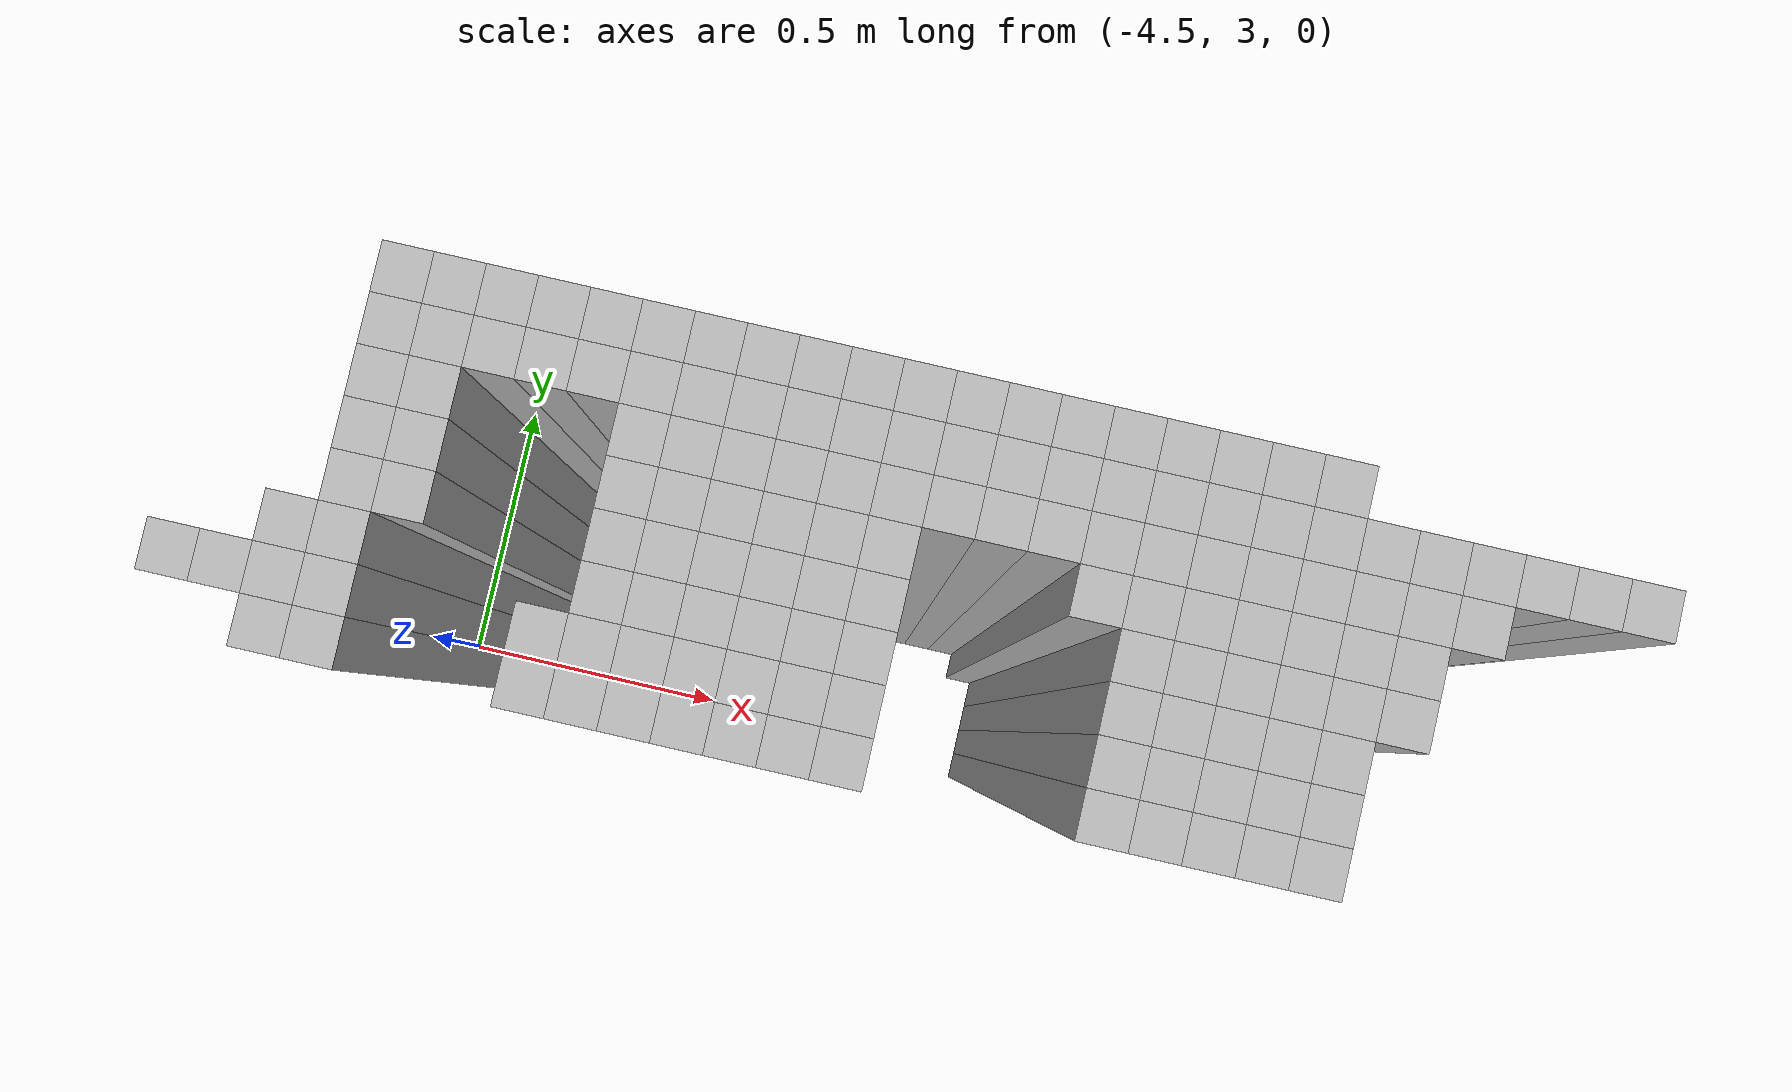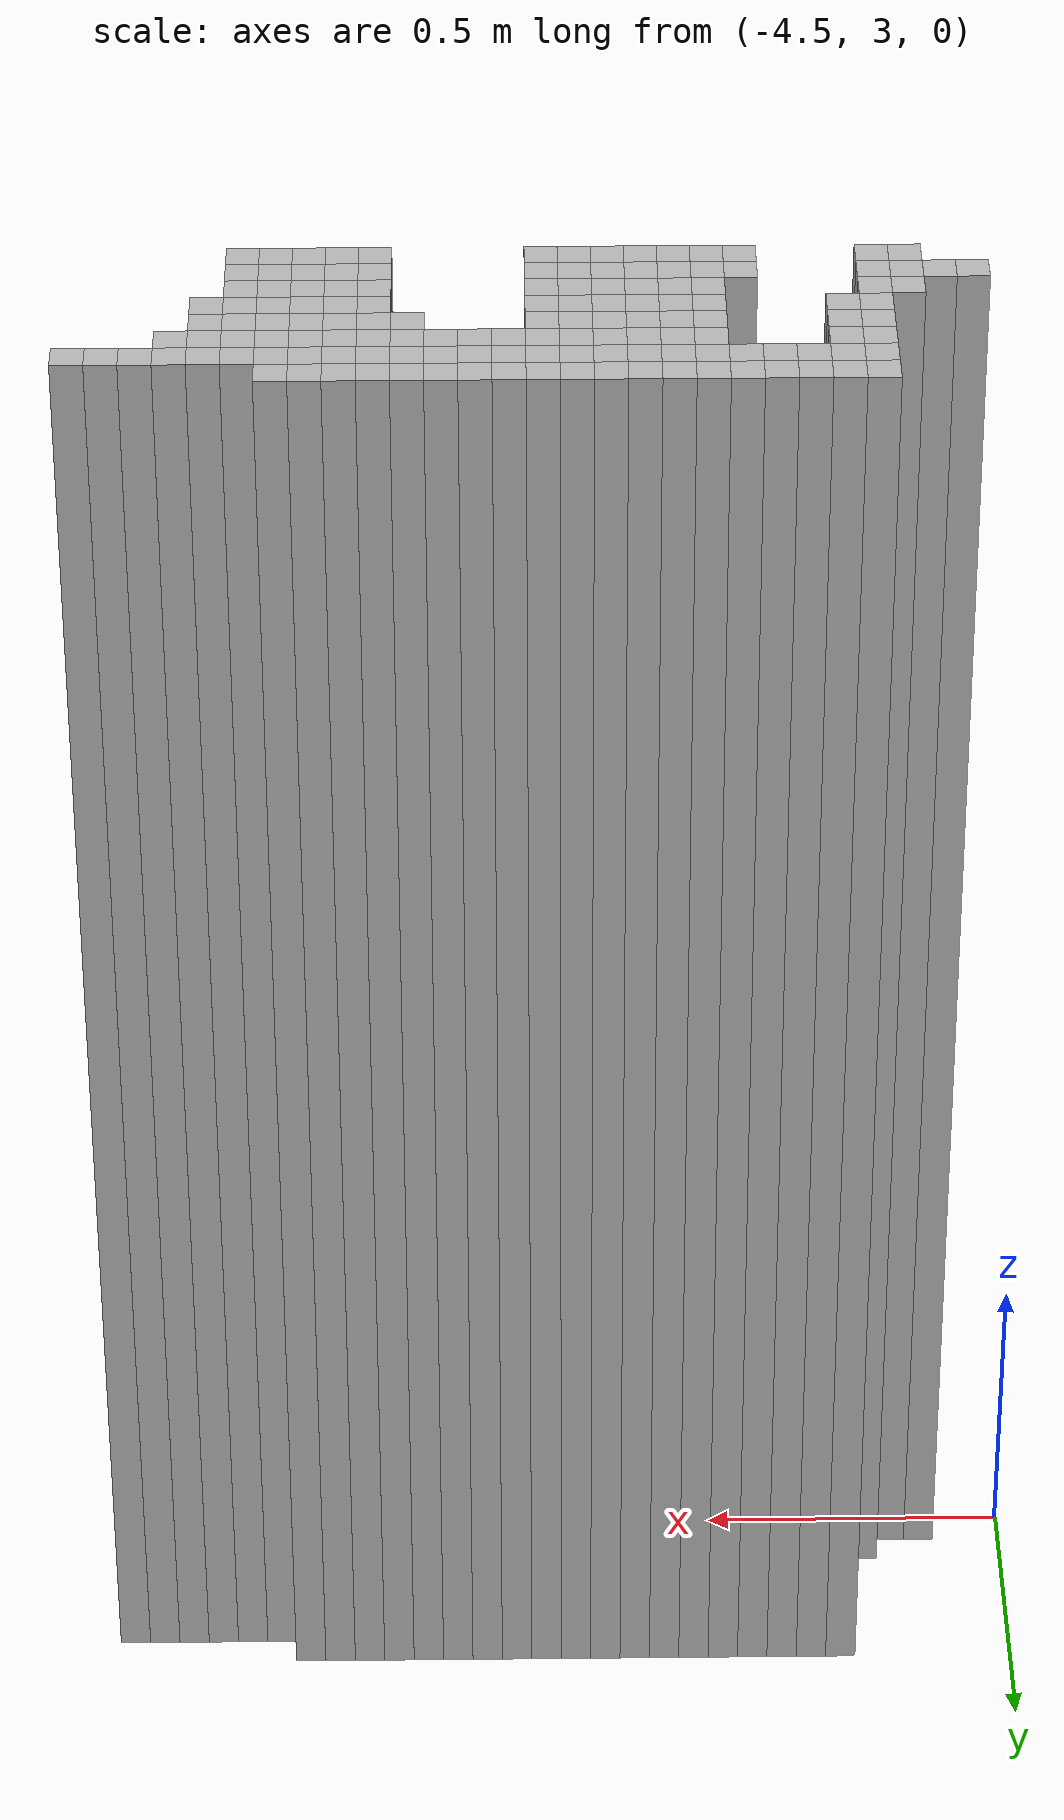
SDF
<sdf version="1.9">
 <world name="map_world">
  <model name="wall_139_87">
   <static>true</static>
   <pose>-4.211 3.330 1.250 0 0 0</pose>
   <link name="link">
    <collision name="collision"><geometry><box><size>0.050 0.050 2.500</size></box></geometry></collision>
    <visual name="visual"><geometry><box><size>0.050 0.050 2.500</size></box></geometry></visual>
   </link>
  </model>
  <model name="wall_140_87">
   <static>true</static>
   <pose>-4.161 3.330 1.250 0 0 0</pose>
   <link name="link">
    <collision name="collision"><geometry><box><size>0.050 0.050 2.500</size></box></geometry></collision>
    <visual name="visual"><geometry><box><size>0.050 0.050 2.500</size></box></geometry></visual>
   </link>
  </model>
  <model name="wall_141_87">
   <static>true</static>
   <pose>-4.111 3.330 1.250 0 0 0</pose>
   <link name="link">
    <collision name="collision"><geometry><box><size>0.050 0.050 2.500</size></box></geometry></collision>
    <visual name="visual"><geometry><box><size>0.050 0.050 2.500</size></box></geometry></visual>
   </link>
  </model>
  <model name="wall_142_87">
   <static>true</static>
   <pose>-4.061 3.330 1.250 0 0 0</pose>
   <link name="link">
    <collision name="collision"><geometry><box><size>0.050 0.050 2.500</size></box></geometry></collision>
    <visual name="visual"><geometry><box><size>0.050 0.050 2.500</size></box></geometry></visual>
   </link>
  </model>
  <model name="wall_143_87">
   <static>true</static>
   <pose>-4.011 3.330 1.250 0 0 0</pose>
   <link name="link">
    <collision name="collision"><geometry><box><size>0.050 0.050 2.500</size></box></geometry></collision>
    <visual name="visual"><geometry><box><size>0.050 0.050 2.500</size></box></geometry></visual>
   </link>
  </model>
  <model name="wall_144_87">
   <static>true</static>
   <pose>-3.961 3.330 1.250 0 0 0</pose>
   <link name="link">
    <collision name="collision"><geometry><box><size>0.050 0.050 2.500</size></box></geometry></collision>
    <visual name="visual"><geometry><box><size>0.050 0.050 2.500</size></box></geometry></visual>
   </link>
  </model>
  <model name="wall_145_87">
   <static>true</static>
   <pose>-3.911 3.330 1.250 0 0 0</pose>
   <link name="link">
    <collision name="collision"><geometry><box><size>0.050 0.050 2.500</size></box></geometry></collision>
    <visual name="visual"><geometry><box><size>0.050 0.050 2.500</size></box></geometry></visual>
   </link>
  </model>
  <model name="wall_146_87">
   <static>true</static>
   <pose>-3.861 3.330 1.250 0 0 0</pose>
   <link name="link">
    <collision name="collision"><geometry><box><size>0.050 0.050 2.500</size></box></geometry></collision>
    <visual name="visual"><geometry><box><size>0.050 0.050 2.500</size></box></geometry></visual>
   </link>
  </model>
  <model name="wall_147_87">
   <static>true</static>
   <pose>-3.811 3.330 1.250 0 0 0</pose>
   <link name="link">
    <collision name="collision"><geometry><box><size>0.050 0.050 2.500</size></box></geometry></collision>
    <visual name="visual"><geometry><box><size>0.050 0.050 2.500</size></box></geometry></visual>
   </link>
  </model>
  <model name="wall_148_87">
   <static>true</static>
   <pose>-3.761 3.330 1.250 0 0 0</pose>
   <link name="link">
    <collision name="collision"><geometry><box><size>0.050 0.050 2.500</size></box></geometry></collision>
    <visual name="visual"><geometry><box><size>0.050 0.050 2.500</size></box></geometry></visual>
   </link>
  </model>
  <model name="wall_149_87">
   <static>true</static>
   <pose>-3.711 3.330 1.250 0 0 0</pose>
   <link name="link">
    <collision name="collision"><geometry><box><size>0.050 0.050 2.500</size></box></geometry></collision>
    <visual name="visual"><geometry><box><size>0.050 0.050 2.500</size></box></geometry></visual>
   </link>
  </model>
  <model name="wall_150_87">
   <static>true</static>
   <pose>-3.661 3.330 1.250 0 0 0</pose>
   <link name="link">
    <collision name="collision"><geometry><box><size>0.050 0.050 2.500</size></box></geometry></collision>
    <visual name="visual"><geometry><box><size>0.050 0.050 2.500</size></box></geometry></visual>
   </link>
  </model>
  <model name="wall_151_87">
   <static>true</static>
   <pose>-3.611 3.330 1.250 0 0 0</pose>
   <link name="link">
    <collision name="collision"><geometry><box><size>0.050 0.050 2.500</size></box></geometry></collision>
    <visual name="visual"><geometry><box><size>0.050 0.050 2.500</size></box></geometry></visual>
   </link>
  </model>
  <model name="wall_152_87">
   <static>true</static>
   <pose>-3.561 3.330 1.250 0 0 0</pose>
   <link name="link">
    <collision name="collision"><geometry><box><size>0.050 0.050 2.500</size></box></geometry></collision>
    <visual name="visual"><geometry><box><size>0.050 0.050 2.500</size></box></geometry></visual>
   </link>
  </model>
  <model name="wall_153_87">
   <static>true</static>
   <pose>-3.511 3.330 1.250 0 0 0</pose>
   <link name="link">
    <collision name="collision"><geometry><box><size>0.050 0.050 2.500</size></box></geometry></collision>
    <visual name="visual"><geometry><box><size>0.050 0.050 2.500</size></box></geometry></visual>
   </link>
  </model>
  <model name="wall_154_87">
   <static>true</static>
   <pose>-3.461 3.330 1.250 0 0 0</pose>
   <link name="link">
    <collision name="collision"><geometry><box><size>0.050 0.050 2.500</size></box></geometry></collision>
    <visual name="visual"><geometry><box><size>0.050 0.050 2.500</size></box></geometry></visual>
   </link>
  </model>
  <model name="wall_155_87">
   <static>true</static>
   <pose>-3.411 3.330 1.250 0 0 0</pose>
   <link name="link">
    <collision name="collision"><geometry><box><size>0.050 0.050 2.500</size></box></geometry></collision>
    <visual name="visual"><geometry><box><size>0.050 0.050 2.500</size></box></geometry></visual>
   </link>
  </model>
  <model name="wall_156_87">
   <static>true</static>
   <pose>-3.361 3.330 1.250 0 0 0</pose>
   <link name="link">
    <collision name="collision"><geometry><box><size>0.050 0.050 2.500</size></box></geometry></collision>
    <visual name="visual"><geometry><box><size>0.050 0.050 2.500</size></box></geometry></visual>
   </link>
  </model>
  <model name="wall_157_87">
   <static>true</static>
   <pose>-3.311 3.330 1.250 0 0 0</pose>
   <link name="link">
    <collision name="collision"><geometry><box><size>0.050 0.050 2.500</size></box></geometry></collision>
    <visual name="visual"><geometry><box><size>0.050 0.050 2.500</size></box></geometry></visual>
   </link>
  </model>
  <model name="wall_139_88">
   <static>true</static>
   <pose>-4.211 3.280 1.250 0 0 0</pose>
   <link name="link">
    <collision name="collision"><geometry><box><size>0.050 0.050 2.500</size></box></geometry></collision>
    <visual name="visual"><geometry><box><size>0.050 0.050 2.500</size></box></geometry></visual>
   </link>
  </model>
  <model name="wall_140_88">
   <static>true</static>
   <pose>-4.161 3.280 1.250 0 0 0</pose>
   <link name="link">
    <collision name="collision"><geometry><box><size>0.050 0.050 2.500</size></box></geometry></collision>
    <visual name="visual"><geometry><box><size>0.050 0.050 2.500</size></box></geometry></visual>
   </link>
  </model>
  <model name="wall_141_88">
   <static>true</static>
   <pose>-4.111 3.280 1.250 0 0 0</pose>
   <link name="link">
    <collision name="collision"><geometry><box><size>0.050 0.050 2.500</size></box></geometry></collision>
    <visual name="visual"><geometry><box><size>0.050 0.050 2.500</size></box></geometry></visual>
   </link>
  </model>
  <model name="wall_142_88">
   <static>true</static>
   <pose>-4.061 3.280 1.250 0 0 0</pose>
   <link name="link">
    <collision name="collision"><geometry><box><size>0.050 0.050 2.500</size></box></geometry></collision>
    <visual name="visual"><geometry><box><size>0.050 0.050 2.500</size></box></geometry></visual>
   </link>
  </model>
  <model name="wall_143_88">
   <static>true</static>
   <pose>-4.011 3.280 1.250 0 0 0</pose>
   <link name="link">
    <collision name="collision"><geometry><box><size>0.050 0.050 2.500</size></box></geometry></collision>
    <visual name="visual"><geometry><box><size>0.050 0.050 2.500</size></box></geometry></visual>
   </link>
  </model>
  <model name="wall_144_88">
   <static>true</static>
   <pose>-3.961 3.280 1.250 0 0 0</pose>
   <link name="link">
    <collision name="collision"><geometry><box><size>0.050 0.050 2.500</size></box></geometry></collision>
    <visual name="visual"><geometry><box><size>0.050 0.050 2.500</size></box></geometry></visual>
   </link>
  </model>
  <model name="wall_145_88">
   <static>true</static>
   <pose>-3.911 3.280 1.250 0 0 0</pose>
   <link name="link">
    <collision name="collision"><geometry><box><size>0.050 0.050 2.500</size></box></geometry></collision>
    <visual name="visual"><geometry><box><size>0.050 0.050 2.500</size></box></geometry></visual>
   </link>
  </model>
  <model name="wall_146_88">
   <static>true</static>
   <pose>-3.861 3.280 1.250 0 0 0</pose>
   <link name="link">
    <collision name="collision"><geometry><box><size>0.050 0.050 2.500</size></box></geometry></collision>
    <visual name="visual"><geometry><box><size>0.050 0.050 2.500</size></box></geometry></visual>
   </link>
  </model>
  <model name="wall_147_88">
   <static>true</static>
   <pose>-3.811 3.280 1.250 0 0 0</pose>
   <link name="link">
    <collision name="collision"><geometry><box><size>0.050 0.050 2.500</size></box></geometry></collision>
    <visual name="visual"><geometry><box><size>0.050 0.050 2.500</size></box></geometry></visual>
   </link>
  </model>
  <model name="wall_148_88">
   <static>true</static>
   <pose>-3.761 3.280 1.250 0 0 0</pose>
   <link name="link">
    <collision name="collision"><geometry><box><size>0.050 0.050 2.500</size></box></geometry></collision>
    <visual name="visual"><geometry><box><size>0.050 0.050 2.500</size></box></geometry></visual>
   </link>
  </model>
  <model name="wall_149_88">
   <static>true</static>
   <pose>-3.711 3.280 1.250 0 0 0</pose>
   <link name="link">
    <collision name="collision"><geometry><box><size>0.050 0.050 2.500</size></box></geometry></collision>
    <visual name="visual"><geometry><box><size>0.050 0.050 2.500</size></box></geometry></visual>
   </link>
  </model>
  <model name="wall_150_88">
   <static>true</static>
   <pose>-3.661 3.280 1.250 0 0 0</pose>
   <link name="link">
    <collision name="collision"><geometry><box><size>0.050 0.050 2.500</size></box></geometry></collision>
    <visual name="visual"><geometry><box><size>0.050 0.050 2.500</size></box></geometry></visual>
   </link>
  </model>
  <model name="wall_151_88">
   <static>true</static>
   <pose>-3.611 3.280 1.250 0 0 0</pose>
   <link name="link">
    <collision name="collision"><geometry><box><size>0.050 0.050 2.500</size></box></geometry></collision>
    <visual name="visual"><geometry><box><size>0.050 0.050 2.500</size></box></geometry></visual>
   </link>
  </model>
  <model name="wall_152_88">
   <static>true</static>
   <pose>-3.561 3.280 1.250 0 0 0</pose>
   <link name="link">
    <collision name="collision"><geometry><box><size>0.050 0.050 2.500</size></box></geometry></collision>
    <visual name="visual"><geometry><box><size>0.050 0.050 2.500</size></box></geometry></visual>
   </link>
  </model>
  <model name="wall_153_88">
   <static>true</static>
   <pose>-3.511 3.280 1.250 0 0 0</pose>
   <link name="link">
    <collision name="collision"><geometry><box><size>0.050 0.050 2.500</size></box></geometry></collision>
    <visual name="visual"><geometry><box><size>0.050 0.050 2.500</size></box></geometry></visual>
   </link>
  </model>
  <model name="wall_154_88">
   <static>true</static>
   <pose>-3.461 3.280 1.250 0 0 0</pose>
   <link name="link">
    <collision name="collision"><geometry><box><size>0.050 0.050 2.500</size></box></geometry></collision>
    <visual name="visual"><geometry><box><size>0.050 0.050 2.500</size></box></geometry></visual>
   </link>
  </model>
  <model name="wall_155_88">
   <static>true</static>
   <pose>-3.411 3.280 1.250 0 0 0</pose>
   <link name="link">
    <collision name="collision"><geometry><box><size>0.050 0.050 2.500</size></box></geometry></collision>
    <visual name="visual"><geometry><box><size>0.050 0.050 2.500</size></box></geometry></visual>
   </link>
  </model>
  <model name="wall_156_88">
   <static>true</static>
   <pose>-3.361 3.280 1.250 0 0 0</pose>
   <link name="link">
    <collision name="collision"><geometry><box><size>0.050 0.050 2.500</size></box></geometry></collision>
    <visual name="visual"><geometry><box><size>0.050 0.050 2.500</size></box></geometry></visual>
   </link>
  </model>
  <model name="wall_157_88">
   <static>true</static>
   <pose>-3.311 3.280 1.250 0 0 0</pose>
   <link name="link">
    <collision name="collision"><geometry><box><size>0.050 0.050 2.500</size></box></geometry></collision>
    <visual name="visual"><geometry><box><size>0.050 0.050 2.500</size></box></geometry></visual>
   </link>
  </model>
  <model name="wall_158_88">
   <static>true</static>
   <pose>-3.261 3.280 1.250 0 0 0</pose>
   <link name="link">
    <collision name="collision"><geometry><box><size>0.050 0.050 2.500</size></box></geometry></collision>
    <visual name="visual"><geometry><box><size>0.050 0.050 2.500</size></box></geometry></visual>
   </link>
  </model>
  <model name="wall_159_88">
   <static>true</static>
   <pose>-3.211 3.280 1.250 0 0 0</pose>
   <link name="link">
    <collision name="collision"><geometry><box><size>0.050 0.050 2.500</size></box></geometry></collision>
    <visual name="visual"><geometry><box><size>0.050 0.050 2.500</size></box></geometry></visual>
   </link>
  </model>
  <model name="wall_160_88">
   <static>true</static>
   <pose>-3.161 3.280 1.250 0 0 0</pose>
   <link name="link">
    <collision name="collision"><geometry><box><size>0.050 0.050 2.500</size></box></geometry></collision>
    <visual name="visual"><geometry><box><size>0.050 0.050 2.500</size></box></geometry></visual>
   </link>
  </model>
  <model name="wall_161_88">
   <static>true</static>
   <pose>-3.111 3.280 1.250 0 0 0</pose>
   <link name="link">
    <collision name="collision"><geometry><box><size>0.050 0.050 2.500</size></box></geometry></collision>
    <visual name="visual"><geometry><box><size>0.050 0.050 2.500</size></box></geometry></visual>
   </link>
  </model>
  <model name="wall_162_88">
   <static>true</static>
   <pose>-3.061 3.280 1.250 0 0 0</pose>
   <link name="link">
    <collision name="collision"><geometry><box><size>0.050 0.050 2.500</size></box></geometry></collision>
    <visual name="visual"><geometry><box><size>0.050 0.050 2.500</size></box></geometry></visual>
   </link>
  </model>
  <model name="wall_163_88">
   <static>true</static>
   <pose>-3.011 3.280 1.250 0 0 0</pose>
   <link name="link">
    <collision name="collision"><geometry><box><size>0.050 0.050 2.500</size></box></geometry></collision>
    <visual name="visual"><geometry><box><size>0.050 0.050 2.500</size></box></geometry></visual>
   </link>
  </model>
  <model name="wall_139_89">
   <static>true</static>
   <pose>-4.211 3.230 1.250 0 0 0</pose>
   <link name="link">
    <collision name="collision"><geometry><box><size>0.050 0.050 2.500</size></box></geometry></collision>
    <visual name="visual"><geometry><box><size>0.050 0.050 2.500</size></box></geometry></visual>
   </link>
  </model>
  <model name="wall_140_89">
   <static>true</static>
   <pose>-4.161 3.230 1.250 0 0 0</pose>
   <link name="link">
    <collision name="collision"><geometry><box><size>0.050 0.050 2.500</size></box></geometry></collision>
    <visual name="visual"><geometry><box><size>0.050 0.050 2.500</size></box></geometry></visual>
   </link>
  </model>
  <model name="wall_144_89">
   <static>true</static>
   <pose>-3.961 3.230 1.250 0 0 0</pose>
   <link name="link">
    <collision name="collision"><geometry><box><size>0.050 0.050 2.500</size></box></geometry></collision>
    <visual name="visual"><geometry><box><size>0.050 0.050 2.500</size></box></geometry></visual>
   </link>
  </model>
  <model name="wall_145_89">
   <static>true</static>
   <pose>-3.911 3.230 1.250 0 0 0</pose>
   <link name="link">
    <collision name="collision"><geometry><box><size>0.050 0.050 2.500</size></box></geometry></collision>
    <visual name="visual"><geometry><box><size>0.050 0.050 2.500</size></box></geometry></visual>
   </link>
  </model>
  <model name="wall_146_89">
   <static>true</static>
   <pose>-3.861 3.230 1.250 0 0 0</pose>
   <link name="link">
    <collision name="collision"><geometry><box><size>0.050 0.050 2.500</size></box></geometry></collision>
    <visual name="visual"><geometry><box><size>0.050 0.050 2.500</size></box></geometry></visual>
   </link>
  </model>
  <model name="wall_147_89">
   <static>true</static>
   <pose>-3.811 3.230 1.250 0 0 0</pose>
   <link name="link">
    <collision name="collision"><geometry><box><size>0.050 0.050 2.500</size></box></geometry></collision>
    <visual name="visual"><geometry><box><size>0.050 0.050 2.500</size></box></geometry></visual>
   </link>
  </model>
  <model name="wall_148_89">
   <static>true</static>
   <pose>-3.761 3.230 1.250 0 0 0</pose>
   <link name="link">
    <collision name="collision"><geometry><box><size>0.050 0.050 2.500</size></box></geometry></collision>
    <visual name="visual"><geometry><box><size>0.050 0.050 2.500</size></box></geometry></visual>
   </link>
  </model>
  <model name="wall_149_89">
   <static>true</static>
   <pose>-3.711 3.230 1.250 0 0 0</pose>
   <link name="link">
    <collision name="collision"><geometry><box><size>0.050 0.050 2.500</size></box></geometry></collision>
    <visual name="visual"><geometry><box><size>0.050 0.050 2.500</size></box></geometry></visual>
   </link>
  </model>
  <model name="wall_150_89">
   <static>true</static>
   <pose>-3.661 3.230 1.250 0 0 0</pose>
   <link name="link">
    <collision name="collision"><geometry><box><size>0.050 0.050 2.500</size></box></geometry></collision>
    <visual name="visual"><geometry><box><size>0.050 0.050 2.500</size></box></geometry></visual>
   </link>
  </model>
  <model name="wall_151_89">
   <static>true</static>
   <pose>-3.611 3.230 1.250 0 0 0</pose>
   <link name="link">
    <collision name="collision"><geometry><box><size>0.050 0.050 2.500</size></box></geometry></collision>
    <visual name="visual"><geometry><box><size>0.050 0.050 2.500</size></box></geometry></visual>
   </link>
  </model>
  <model name="wall_152_89">
   <static>true</static>
   <pose>-3.561 3.230 1.250 0 0 0</pose>
   <link name="link">
    <collision name="collision"><geometry><box><size>0.050 0.050 2.500</size></box></geometry></collision>
    <visual name="visual"><geometry><box><size>0.050 0.050 2.500</size></box></geometry></visual>
   </link>
  </model>
  <model name="wall_153_89">
   <static>true</static>
   <pose>-3.511 3.230 1.250 0 0 0</pose>
   <link name="link">
    <collision name="collision"><geometry><box><size>0.050 0.050 2.500</size></box></geometry></collision>
    <visual name="visual"><geometry><box><size>0.050 0.050 2.500</size></box></geometry></visual>
   </link>
  </model>
  <model name="wall_154_89">
   <static>true</static>
   <pose>-3.461 3.230 1.250 0 0 0</pose>
   <link name="link">
    <collision name="collision"><geometry><box><size>0.050 0.050 2.500</size></box></geometry></collision>
    <visual name="visual"><geometry><box><size>0.050 0.050 2.500</size></box></geometry></visual>
   </link>
  </model>
  <model name="wall_155_89">
   <static>true</static>
   <pose>-3.411 3.230 1.250 0 0 0</pose>
   <link name="link">
    <collision name="collision"><geometry><box><size>0.050 0.050 2.500</size></box></geometry></collision>
    <visual name="visual"><geometry><box><size>0.050 0.050 2.500</size></box></geometry></visual>
   </link>
  </model>
  <model name="wall_156_89">
   <static>true</static>
   <pose>-3.361 3.230 1.250 0 0 0</pose>
   <link name="link">
    <collision name="collision"><geometry><box><size>0.050 0.050 2.500</size></box></geometry></collision>
    <visual name="visual"><geometry><box><size>0.050 0.050 2.500</size></box></geometry></visual>
   </link>
  </model>
  <model name="wall_157_89">
   <static>true</static>
   <pose>-3.311 3.230 1.250 0 0 0</pose>
   <link name="link">
    <collision name="collision"><geometry><box><size>0.050 0.050 2.500</size></box></geometry></collision>
    <visual name="visual"><geometry><box><size>0.050 0.050 2.500</size></box></geometry></visual>
   </link>
  </model>
  <model name="wall_158_89">
   <static>true</static>
   <pose>-3.261 3.230 1.250 0 0 0</pose>
   <link name="link">
    <collision name="collision"><geometry><box><size>0.050 0.050 2.500</size></box></geometry></collision>
    <visual name="visual"><geometry><box><size>0.050 0.050 2.500</size></box></geometry></visual>
   </link>
  </model>
  <model name="wall_159_89">
   <static>true</static>
   <pose>-3.211 3.230 1.250 0 0 0</pose>
   <link name="link">
    <collision name="collision"><geometry><box><size>0.050 0.050 2.500</size></box></geometry></collision>
    <visual name="visual"><geometry><box><size>0.050 0.050 2.500</size></box></geometry></visual>
   </link>
  </model>
  <model name="wall_160_89">
   <static>true</static>
   <pose>-3.161 3.230 1.250 0 0 0</pose>
   <link name="link">
    <collision name="collision"><geometry><box><size>0.050 0.050 2.500</size></box></geometry></collision>
    <visual name="visual"><geometry><box><size>0.050 0.050 2.500</size></box></geometry></visual>
   </link>
  </model>
  <model name="wall_139_90">
   <static>true</static>
   <pose>-4.211 3.180 1.250 0 0 0</pose>
   <link name="link">
    <collision name="collision"><geometry><box><size>0.050 0.050 2.500</size></box></geometry></collision>
    <visual name="visual"><geometry><box><size>0.050 0.050 2.500</size></box></geometry></visual>
   </link>
  </model>
  <model name="wall_140_90">
   <static>true</static>
   <pose>-4.161 3.180 1.250 0 0 0</pose>
   <link name="link">
    <collision name="collision"><geometry><box><size>0.050 0.050 2.500</size></box></geometry></collision>
    <visual name="visual"><geometry><box><size>0.050 0.050 2.500</size></box></geometry></visual>
   </link>
  </model>
  <model name="wall_144_90">
   <static>true</static>
   <pose>-3.961 3.180 1.250 0 0 0</pose>
   <link name="link">
    <collision name="collision"><geometry><box><size>0.050 0.050 2.500</size></box></geometry></collision>
    <visual name="visual"><geometry><box><size>0.050 0.050 2.500</size></box></geometry></visual>
   </link>
  </model>
  <model name="wall_145_90">
   <static>true</static>
   <pose>-3.911 3.180 1.250 0 0 0</pose>
   <link name="link">
    <collision name="collision"><geometry><box><size>0.050 0.050 2.500</size></box></geometry></collision>
    <visual name="visual"><geometry><box><size>0.050 0.050 2.500</size></box></geometry></visual>
   </link>
  </model>
  <model name="wall_146_90">
   <static>true</static>
   <pose>-3.861 3.180 1.250 0 0 0</pose>
   <link name="link">
    <collision name="collision"><geometry><box><size>0.050 0.050 2.500</size></box></geometry></collision>
    <visual name="visual"><geometry><box><size>0.050 0.050 2.500</size></box></geometry></visual>
   </link>
  </model>
  <model name="wall_147_90">
   <static>true</static>
   <pose>-3.811 3.180 1.250 0 0 0</pose>
   <link name="link">
    <collision name="collision"><geometry><box><size>0.050 0.050 2.500</size></box></geometry></collision>
    <visual name="visual"><geometry><box><size>0.050 0.050 2.500</size></box></geometry></visual>
   </link>
  </model>
  <model name="wall_148_90">
   <static>true</static>
   <pose>-3.761 3.180 1.250 0 0 0</pose>
   <link name="link">
    <collision name="collision"><geometry><box><size>0.050 0.050 2.500</size></box></geometry></collision>
    <visual name="visual"><geometry><box><size>0.050 0.050 2.500</size></box></geometry></visual>
   </link>
  </model>
  <model name="wall_149_90">
   <static>true</static>
   <pose>-3.711 3.180 1.250 0 0 0</pose>
   <link name="link">
    <collision name="collision"><geometry><box><size>0.050 0.050 2.500</size></box></geometry></collision>
    <visual name="visual"><geometry><box><size>0.050 0.050 2.500</size></box></geometry></visual>
   </link>
  </model>
  <model name="wall_153_90">
   <static>true</static>
   <pose>-3.511 3.180 1.250 0 0 0</pose>
   <link name="link">
    <collision name="collision"><geometry><box><size>0.050 0.050 2.500</size></box></geometry></collision>
    <visual name="visual"><geometry><box><size>0.050 0.050 2.500</size></box></geometry></visual>
   </link>
  </model>
  <model name="wall_154_90">
   <static>true</static>
   <pose>-3.461 3.180 1.250 0 0 0</pose>
   <link name="link">
    <collision name="collision"><geometry><box><size>0.050 0.050 2.500</size></box></geometry></collision>
    <visual name="visual"><geometry><box><size>0.050 0.050 2.500</size></box></geometry></visual>
   </link>
  </model>
  <model name="wall_155_90">
   <static>true</static>
   <pose>-3.411 3.180 1.250 0 0 0</pose>
   <link name="link">
    <collision name="collision"><geometry><box><size>0.050 0.050 2.500</size></box></geometry></collision>
    <visual name="visual"><geometry><box><size>0.050 0.050 2.500</size></box></geometry></visual>
   </link>
  </model>
  <model name="wall_156_90">
   <static>true</static>
   <pose>-3.361 3.180 1.250 0 0 0</pose>
   <link name="link">
    <collision name="collision"><geometry><box><size>0.050 0.050 2.500</size></box></geometry></collision>
    <visual name="visual"><geometry><box><size>0.050 0.050 2.500</size></box></geometry></visual>
   </link>
  </model>
  <model name="wall_157_90">
   <static>true</static>
   <pose>-3.311 3.180 1.250 0 0 0</pose>
   <link name="link">
    <collision name="collision"><geometry><box><size>0.050 0.050 2.500</size></box></geometry></collision>
    <visual name="visual"><geometry><box><size>0.050 0.050 2.500</size></box></geometry></visual>
   </link>
  </model>
  <model name="wall_158_90">
   <static>true</static>
   <pose>-3.261 3.180 1.250 0 0 0</pose>
   <link name="link">
    <collision name="collision"><geometry><box><size>0.050 0.050 2.500</size></box></geometry></collision>
    <visual name="visual"><geometry><box><size>0.050 0.050 2.500</size></box></geometry></visual>
   </link>
  </model>
  <model name="wall_159_90">
   <static>true</static>
   <pose>-3.211 3.180 1.250 0 0 0</pose>
   <link name="link">
    <collision name="collision"><geometry><box><size>0.050 0.050 2.500</size></box></geometry></collision>
    <visual name="visual"><geometry><box><size>0.050 0.050 2.500</size></box></geometry></visual>
   </link>
  </model>
  <model name="wall_139_91">
   <static>true</static>
   <pose>-4.211 3.130 1.250 0 0 0</pose>
   <link name="link">
    <collision name="collision"><geometry><box><size>0.050 0.050 2.500</size></box></geometry></collision>
    <visual name="visual"><geometry><box><size>0.050 0.050 2.500</size></box></geometry></visual>
   </link>
  </model>
  <model name="wall_140_91">
   <static>true</static>
   <pose>-4.161 3.130 1.250 0 0 0</pose>
   <link name="link">
    <collision name="collision"><geometry><box><size>0.050 0.050 2.500</size></box></geometry></collision>
    <visual name="visual"><geometry><box><size>0.050 0.050 2.500</size></box></geometry></visual>
   </link>
  </model>
  <model name="wall_144_91">
   <static>true</static>
   <pose>-3.961 3.130 1.250 0 0 0</pose>
   <link name="link">
    <collision name="collision"><geometry><box><size>0.050 0.050 2.500</size></box></geometry></collision>
    <visual name="visual"><geometry><box><size>0.050 0.050 2.500</size></box></geometry></visual>
   </link>
  </model>
  <model name="wall_145_91">
   <static>true</static>
   <pose>-3.911 3.130 1.250 0 0 0</pose>
   <link name="link">
    <collision name="collision"><geometry><box><size>0.050 0.050 2.500</size></box></geometry></collision>
    <visual name="visual"><geometry><box><size>0.050 0.050 2.500</size></box></geometry></visual>
   </link>
  </model>
  <model name="wall_146_91">
   <static>true</static>
   <pose>-3.861 3.130 1.250 0 0 0</pose>
   <link name="link">
    <collision name="collision"><geometry><box><size>0.050 0.050 2.500</size></box></geometry></collision>
    <visual name="visual"><geometry><box><size>0.050 0.050 2.500</size></box></geometry></visual>
   </link>
  </model>
  <model name="wall_147_91">
   <static>true</static>
   <pose>-3.811 3.130 1.250 0 0 0</pose>
   <link name="link">
    <collision name="collision"><geometry><box><size>0.050 0.050 2.500</size></box></geometry></collision>
    <visual name="visual"><geometry><box><size>0.050 0.050 2.500</size></box></geometry></visual>
   </link>
  </model>
  <model name="wall_148_91">
   <static>true</static>
   <pose>-3.761 3.130 1.250 0 0 0</pose>
   <link name="link">
    <collision name="collision"><geometry><box><size>0.050 0.050 2.500</size></box></geometry></collision>
    <visual name="visual"><geometry><box><size>0.050 0.050 2.500</size></box></geometry></visual>
   </link>
  </model>
  <model name="wall_149_91">
   <static>true</static>
   <pose>-3.711 3.130 1.250 0 0 0</pose>
   <link name="link">
    <collision name="collision"><geometry><box><size>0.050 0.050 2.500</size></box></geometry></collision>
    <visual name="visual"><geometry><box><size>0.050 0.050 2.500</size></box></geometry></visual>
   </link>
  </model>
  <model name="wall_154_91">
   <static>true</static>
   <pose>-3.461 3.130 1.250 0 0 0</pose>
   <link name="link">
    <collision name="collision"><geometry><box><size>0.050 0.050 2.500</size></box></geometry></collision>
    <visual name="visual"><geometry><box><size>0.050 0.050 2.500</size></box></geometry></visual>
   </link>
  </model>
  <model name="wall_155_91">
   <static>true</static>
   <pose>-3.411 3.130 1.250 0 0 0</pose>
   <link name="link">
    <collision name="collision"><geometry><box><size>0.050 0.050 2.500</size></box></geometry></collision>
    <visual name="visual"><geometry><box><size>0.050 0.050 2.500</size></box></geometry></visual>
   </link>
  </model>
  <model name="wall_156_91">
   <static>true</static>
   <pose>-3.361 3.130 1.250 0 0 0</pose>
   <link name="link">
    <collision name="collision"><geometry><box><size>0.050 0.050 2.500</size></box></geometry></collision>
    <visual name="visual"><geometry><box><size>0.050 0.050 2.500</size></box></geometry></visual>
   </link>
  </model>
  <model name="wall_157_91">
   <static>true</static>
   <pose>-3.311 3.130 1.250 0 0 0</pose>
   <link name="link">
    <collision name="collision"><geometry><box><size>0.050 0.050 2.500</size></box></geometry></collision>
    <visual name="visual"><geometry><box><size>0.050 0.050 2.500</size></box></geometry></visual>
   </link>
  </model>
  <model name="wall_158_91">
   <static>true</static>
   <pose>-3.261 3.130 1.250 0 0 0</pose>
   <link name="link">
    <collision name="collision"><geometry><box><size>0.050 0.050 2.500</size></box></geometry></collision>
    <visual name="visual"><geometry><box><size>0.050 0.050 2.500</size></box></geometry></visual>
   </link>
  </model>
  <model name="wall_159_91">
   <static>true</static>
   <pose>-3.211 3.130 1.250 0 0 0</pose>
   <link name="link">
    <collision name="collision"><geometry><box><size>0.050 0.050 2.500</size></box></geometry></collision>
    <visual name="visual"><geometry><box><size>0.050 0.050 2.500</size></box></geometry></visual>
   </link>
  </model>
  <model name="wall_138_92">
   <static>true</static>
   <pose>-4.261 3.080 1.250 0 0 0</pose>
   <link name="link">
    <collision name="collision"><geometry><box><size>0.050 0.050 2.500</size></box></geometry></collision>
    <visual name="visual"><geometry><box><size>0.050 0.050 2.500</size></box></geometry></visual>
   </link>
  </model>
  <model name="wall_139_92">
   <static>true</static>
   <pose>-4.211 3.080 1.250 0 0 0</pose>
   <link name="link">
    <collision name="collision"><geometry><box><size>0.050 0.050 2.500</size></box></geometry></collision>
    <visual name="visual"><geometry><box><size>0.050 0.050 2.500</size></box></geometry></visual>
   </link>
  </model>
  <model name="wall_144_92">
   <static>true</static>
   <pose>-3.961 3.080 1.250 0 0 0</pose>
   <link name="link">
    <collision name="collision"><geometry><box><size>0.050 0.050 2.500</size></box></geometry></collision>
    <visual name="visual"><geometry><box><size>0.050 0.050 2.500</size></box></geometry></visual>
   </link>
  </model>
  <model name="wall_145_92">
   <static>true</static>
   <pose>-3.911 3.080 1.250 0 0 0</pose>
   <link name="link">
    <collision name="collision"><geometry><box><size>0.050 0.050 2.500</size></box></geometry></collision>
    <visual name="visual"><geometry><box><size>0.050 0.050 2.500</size></box></geometry></visual>
   </link>
  </model>
  <model name="wall_146_92">
   <static>true</static>
   <pose>-3.861 3.080 1.250 0 0 0</pose>
   <link name="link">
    <collision name="collision"><geometry><box><size>0.050 0.050 2.500</size></box></geometry></collision>
    <visual name="visual"><geometry><box><size>0.050 0.050 2.500</size></box></geometry></visual>
   </link>
  </model>
  <model name="wall_147_92">
   <static>true</static>
   <pose>-3.811 3.080 1.250 0 0 0</pose>
   <link name="link">
    <collision name="collision"><geometry><box><size>0.050 0.050 2.500</size></box></geometry></collision>
    <visual name="visual"><geometry><box><size>0.050 0.050 2.500</size></box></geometry></visual>
   </link>
  </model>
  <model name="wall_148_92">
   <static>true</static>
   <pose>-3.761 3.080 1.250 0 0 0</pose>
   <link name="link">
    <collision name="collision"><geometry><box><size>0.050 0.050 2.500</size></box></geometry></collision>
    <visual name="visual"><geometry><box><size>0.050 0.050 2.500</size></box></geometry></visual>
   </link>
  </model>
  <model name="wall_149_92">
   <static>true</static>
   <pose>-3.711 3.080 1.250 0 0 0</pose>
   <link name="link">
    <collision name="collision"><geometry><box><size>0.050 0.050 2.500</size></box></geometry></collision>
    <visual name="visual"><geometry><box><size>0.050 0.050 2.500</size></box></geometry></visual>
   </link>
  </model>
  <model name="wall_154_92">
   <static>true</static>
   <pose>-3.461 3.080 1.250 0 0 0</pose>
   <link name="link">
    <collision name="collision"><geometry><box><size>0.050 0.050 2.500</size></box></geometry></collision>
    <visual name="visual"><geometry><box><size>0.050 0.050 2.500</size></box></geometry></visual>
   </link>
  </model>
  <model name="wall_155_92">
   <static>true</static>
   <pose>-3.411 3.080 1.250 0 0 0</pose>
   <link name="link">
    <collision name="collision"><geometry><box><size>0.050 0.050 2.500</size></box></geometry></collision>
    <visual name="visual"><geometry><box><size>0.050 0.050 2.500</size></box></geometry></visual>
   </link>
  </model>
  <model name="wall_156_92">
   <static>true</static>
   <pose>-3.361 3.080 1.250 0 0 0</pose>
   <link name="link">
    <collision name="collision"><geometry><box><size>0.050 0.050 2.500</size></box></geometry></collision>
    <visual name="visual"><geometry><box><size>0.050 0.050 2.500</size></box></geometry></visual>
   </link>
  </model>
  <model name="wall_157_92">
   <static>true</static>
   <pose>-3.311 3.080 1.250 0 0 0</pose>
   <link name="link">
    <collision name="collision"><geometry><box><size>0.050 0.050 2.500</size></box></geometry></collision>
    <visual name="visual"><geometry><box><size>0.050 0.050 2.500</size></box></geometry></visual>
   </link>
  </model>
  <model name="wall_158_92">
   <static>true</static>
   <pose>-3.261 3.080 1.250 0 0 0</pose>
   <link name="link">
    <collision name="collision"><geometry><box><size>0.050 0.050 2.500</size></box></geometry></collision>
    <visual name="visual"><geometry><box><size>0.050 0.050 2.500</size></box></geometry></visual>
   </link>
  </model>
  <model name="wall_136_93">
   <static>true</static>
   <pose>-4.361 3.030 1.250 0 0 0</pose>
   <link name="link">
    <collision name="collision"><geometry><box><size>0.050 0.050 2.500</size></box></geometry></collision>
    <visual name="visual"><geometry><box><size>0.050 0.050 2.500</size></box></geometry></visual>
   </link>
  </model>
  <model name="wall_137_93">
   <static>true</static>
   <pose>-4.311 3.030 1.250 0 0 0</pose>
   <link name="link">
    <collision name="collision"><geometry><box><size>0.050 0.050 2.500</size></box></geometry></collision>
    <visual name="visual"><geometry><box><size>0.050 0.050 2.500</size></box></geometry></visual>
   </link>
  </model>
  <model name="wall_138_93">
   <static>true</static>
   <pose>-4.261 3.030 1.250 0 0 0</pose>
   <link name="link">
    <collision name="collision"><geometry><box><size>0.050 0.050 2.500</size></box></geometry></collision>
    <visual name="visual"><geometry><box><size>0.050 0.050 2.500</size></box></geometry></visual>
   </link>
  </model>
  <model name="wall_139_93">
   <static>true</static>
   <pose>-4.211 3.030 1.250 0 0 0</pose>
   <link name="link">
    <collision name="collision"><geometry><box><size>0.050 0.050 2.500</size></box></geometry></collision>
    <visual name="visual"><geometry><box><size>0.050 0.050 2.500</size></box></geometry></visual>
   </link>
  </model>
  <model name="wall_143_93">
   <static>true</static>
   <pose>-4.011 3.030 1.250 0 0 0</pose>
   <link name="link">
    <collision name="collision"><geometry><box><size>0.050 0.050 2.500</size></box></geometry></collision>
    <visual name="visual"><geometry><box><size>0.050 0.050 2.500</size></box></geometry></visual>
   </link>
  </model>
  <model name="wall_144_93">
   <static>true</static>
   <pose>-3.961 3.030 1.250 0 0 0</pose>
   <link name="link">
    <collision name="collision"><geometry><box><size>0.050 0.050 2.500</size></box></geometry></collision>
    <visual name="visual"><geometry><box><size>0.050 0.050 2.500</size></box></geometry></visual>
   </link>
  </model>
  <model name="wall_145_93">
   <static>true</static>
   <pose>-3.911 3.030 1.250 0 0 0</pose>
   <link name="link">
    <collision name="collision"><geometry><box><size>0.050 0.050 2.500</size></box></geometry></collision>
    <visual name="visual"><geometry><box><size>0.050 0.050 2.500</size></box></geometry></visual>
   </link>
  </model>
  <model name="wall_146_93">
   <static>true</static>
   <pose>-3.861 3.030 1.250 0 0 0</pose>
   <link name="link">
    <collision name="collision"><geometry><box><size>0.050 0.050 2.500</size></box></geometry></collision>
    <visual name="visual"><geometry><box><size>0.050 0.050 2.500</size></box></geometry></visual>
   </link>
  </model>
  <model name="wall_147_93">
   <static>true</static>
   <pose>-3.811 3.030 1.250 0 0 0</pose>
   <link name="link">
    <collision name="collision"><geometry><box><size>0.050 0.050 2.500</size></box></geometry></collision>
    <visual name="visual"><geometry><box><size>0.050 0.050 2.500</size></box></geometry></visual>
   </link>
  </model>
  <model name="wall_148_93">
   <static>true</static>
   <pose>-3.761 3.030 1.250 0 0 0</pose>
   <link name="link">
    <collision name="collision"><geometry><box><size>0.050 0.050 2.500</size></box></geometry></collision>
    <visual name="visual"><geometry><box><size>0.050 0.050 2.500</size></box></geometry></visual>
   </link>
  </model>
  <model name="wall_149_93">
   <static>true</static>
   <pose>-3.711 3.030 1.250 0 0 0</pose>
   <link name="link">
    <collision name="collision"><geometry><box><size>0.050 0.050 2.500</size></box></geometry></collision>
    <visual name="visual"><geometry><box><size>0.050 0.050 2.500</size></box></geometry></visual>
   </link>
  </model>
  <model name="wall_154_93">
   <static>true</static>
   <pose>-3.461 3.030 1.250 0 0 0</pose>
   <link name="link">
    <collision name="collision"><geometry><box><size>0.050 0.050 2.500</size></box></geometry></collision>
    <visual name="visual"><geometry><box><size>0.050 0.050 2.500</size></box></geometry></visual>
   </link>
  </model>
  <model name="wall_155_93">
   <static>true</static>
   <pose>-3.411 3.030 1.250 0 0 0</pose>
   <link name="link">
    <collision name="collision"><geometry><box><size>0.050 0.050 2.500</size></box></geometry></collision>
    <visual name="visual"><geometry><box><size>0.050 0.050 2.500</size></box></geometry></visual>
   </link>
  </model>
  <model name="wall_156_93">
   <static>true</static>
   <pose>-3.361 3.030 1.250 0 0 0</pose>
   <link name="link">
    <collision name="collision"><geometry><box><size>0.050 0.050 2.500</size></box></geometry></collision>
    <visual name="visual"><geometry><box><size>0.050 0.050 2.500</size></box></geometry></visual>
   </link>
  </model>
  <model name="wall_157_93">
   <static>true</static>
   <pose>-3.311 3.030 1.250 0 0 0</pose>
   <link name="link">
    <collision name="collision"><geometry><box><size>0.050 0.050 2.500</size></box></geometry></collision>
    <visual name="visual"><geometry><box><size>0.050 0.050 2.500</size></box></geometry></visual>
   </link>
  </model>
  <model name="wall_158_93">
   <static>true</static>
   <pose>-3.261 3.030 1.250 0 0 0</pose>
   <link name="link">
    <collision name="collision"><geometry><box><size>0.050 0.050 2.500</size></box></geometry></collision>
    <visual name="visual"><geometry><box><size>0.050 0.050 2.500</size></box></geometry></visual>
   </link>
  </model>
  <model name="wall_138_94">
   <static>true</static>
   <pose>-4.261 2.980 1.250 0 0 0</pose>
   <link name="link">
    <collision name="collision"><geometry><box><size>0.050 0.050 2.500</size></box></geometry></collision>
    <visual name="visual"><geometry><box><size>0.050 0.050 2.500</size></box></geometry></visual>
   </link>
  </model>
  <model name="wall_139_94">
   <static>true</static>
   <pose>-4.211 2.980 1.250 0 0 0</pose>
   <link name="link">
    <collision name="collision"><geometry><box><size>0.050 0.050 2.500</size></box></geometry></collision>
    <visual name="visual"><geometry><box><size>0.050 0.050 2.500</size></box></geometry></visual>
   </link>
  </model>
  <model name="wall_143_94">
   <static>true</static>
   <pose>-4.011 2.980 1.250 0 0 0</pose>
   <link name="link">
    <collision name="collision"><geometry><box><size>0.050 0.050 2.500</size></box></geometry></collision>
    <visual name="visual"><geometry><box><size>0.050 0.050 2.500</size></box></geometry></visual>
   </link>
  </model>
  <model name="wall_144_94">
   <static>true</static>
   <pose>-3.961 2.980 1.250 0 0 0</pose>
   <link name="link">
    <collision name="collision"><geometry><box><size>0.050 0.050 2.500</size></box></geometry></collision>
    <visual name="visual"><geometry><box><size>0.050 0.050 2.500</size></box></geometry></visual>
   </link>
  </model>
  <model name="wall_145_94">
   <static>true</static>
   <pose>-3.911 2.980 1.250 0 0 0</pose>
   <link name="link">
    <collision name="collision"><geometry><box><size>0.050 0.050 2.500</size></box></geometry></collision>
    <visual name="visual"><geometry><box><size>0.050 0.050 2.500</size></box></geometry></visual>
   </link>
  </model>
  <model name="wall_146_94">
   <static>true</static>
   <pose>-3.861 2.980 1.250 0 0 0</pose>
   <link name="link">
    <collision name="collision"><geometry><box><size>0.050 0.050 2.500</size></box></geometry></collision>
    <visual name="visual"><geometry><box><size>0.050 0.050 2.500</size></box></geometry></visual>
   </link>
  </model>
  <model name="wall_147_94">
   <static>true</static>
   <pose>-3.811 2.980 1.250 0 0 0</pose>
   <link name="link">
    <collision name="collision"><geometry><box><size>0.050 0.050 2.500</size></box></geometry></collision>
    <visual name="visual"><geometry><box><size>0.050 0.050 2.500</size></box></geometry></visual>
   </link>
  </model>
  <model name="wall_148_94">
   <static>true</static>
   <pose>-3.761 2.980 1.250 0 0 0</pose>
   <link name="link">
    <collision name="collision"><geometry><box><size>0.050 0.050 2.500</size></box></geometry></collision>
    <visual name="visual"><geometry><box><size>0.050 0.050 2.500</size></box></geometry></visual>
   </link>
  </model>
  <model name="wall_149_94">
   <static>true</static>
   <pose>-3.711 2.980 1.250 0 0 0</pose>
   <link name="link">
    <collision name="collision"><geometry><box><size>0.050 0.050 2.500</size></box></geometry></collision>
    <visual name="visual"><geometry><box><size>0.050 0.050 2.500</size></box></geometry></visual>
   </link>
  </model>
  <model name="wall_154_94">
   <static>true</static>
   <pose>-3.461 2.980 1.250 0 0 0</pose>
   <link name="link">
    <collision name="collision"><geometry><box><size>0.050 0.050 2.500</size></box></geometry></collision>
    <visual name="visual"><geometry><box><size>0.050 0.050 2.500</size></box></geometry></visual>
   </link>
  </model>
  <model name="wall_155_94">
   <static>true</static>
   <pose>-3.411 2.980 1.250 0 0 0</pose>
   <link name="link">
    <collision name="collision"><geometry><box><size>0.050 0.050 2.500</size></box></geometry></collision>
    <visual name="visual"><geometry><box><size>0.050 0.050 2.500</size></box></geometry></visual>
   </link>
  </model>
  <model name="wall_156_94">
   <static>true</static>
   <pose>-3.361 2.980 1.250 0 0 0</pose>
   <link name="link">
    <collision name="collision"><geometry><box><size>0.050 0.050 2.500</size></box></geometry></collision>
    <visual name="visual"><geometry><box><size>0.050 0.050 2.500</size></box></geometry></visual>
   </link>
  </model>
  <model name="wall_157_94">
   <static>true</static>
   <pose>-3.311 2.980 1.250 0 0 0</pose>
   <link name="link">
    <collision name="collision"><geometry><box><size>0.050 0.050 2.500</size></box></geometry></collision>
    <visual name="visual"><geometry><box><size>0.050 0.050 2.500</size></box></geometry></visual>
   </link>
  </model>
  <model name="wall_158_94">
   <static>true</static>
   <pose>-3.261 2.980 1.250 0 0 0</pose>
   <link name="link">
    <collision name="collision"><geometry><box><size>0.050 0.050 2.500</size></box></geometry></collision>
    <visual name="visual"><geometry><box><size>0.050 0.050 2.500</size></box></geometry></visual>
   </link>
  </model>
 </world>
</sdf>
